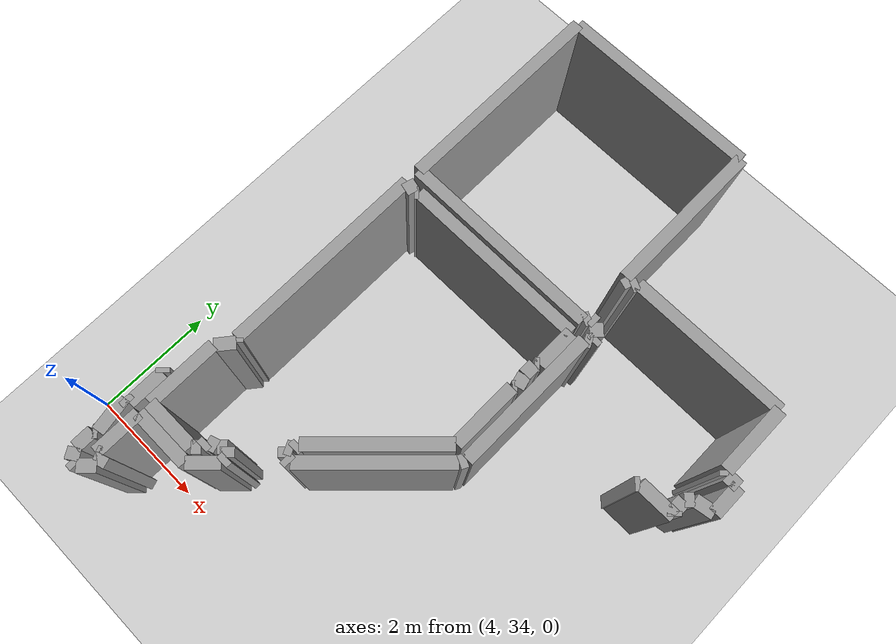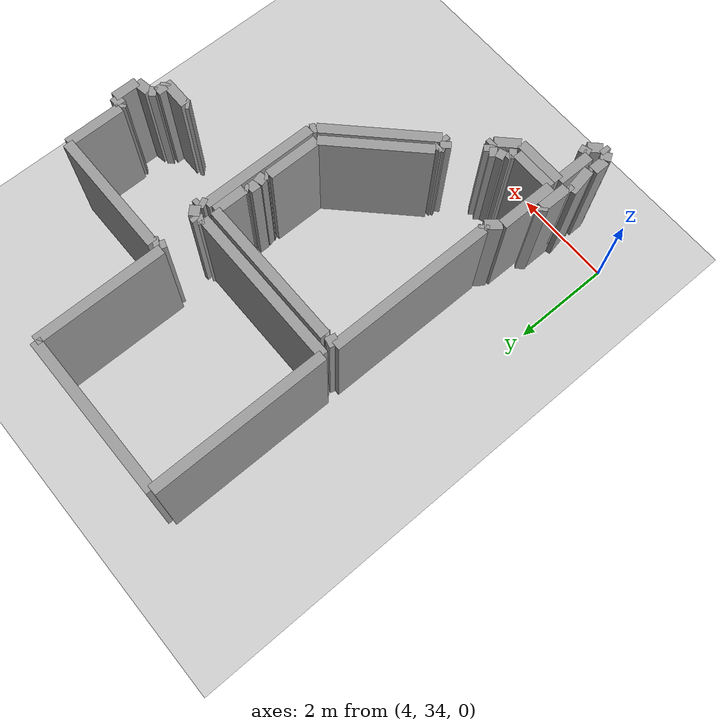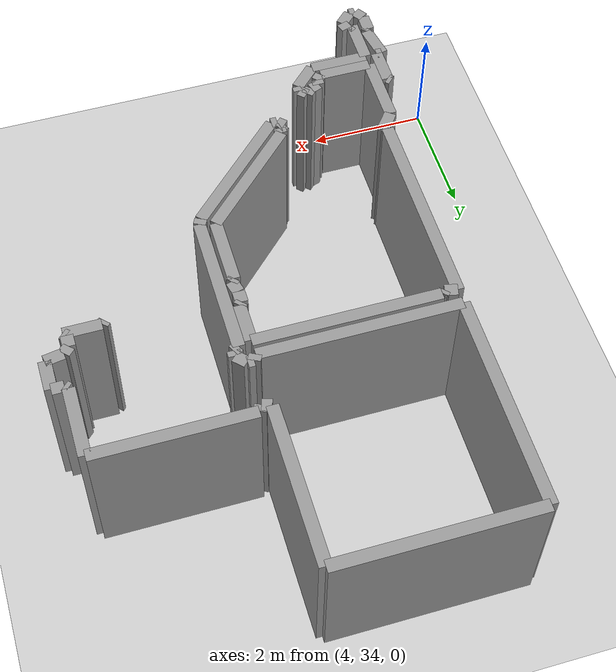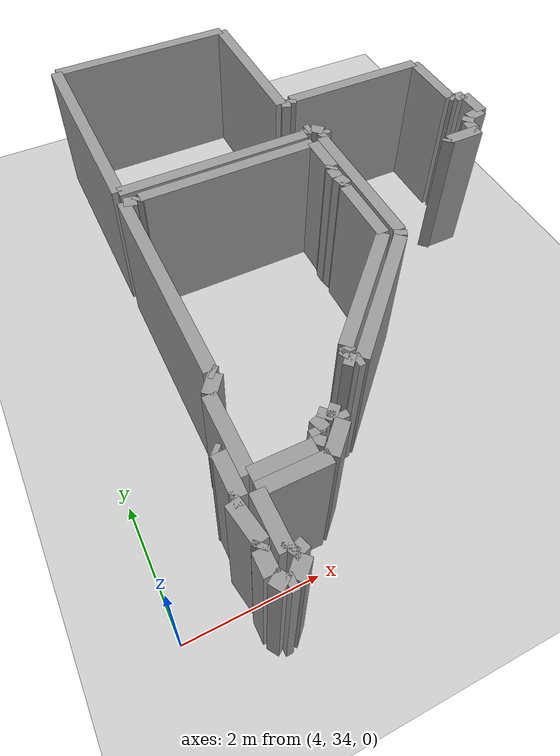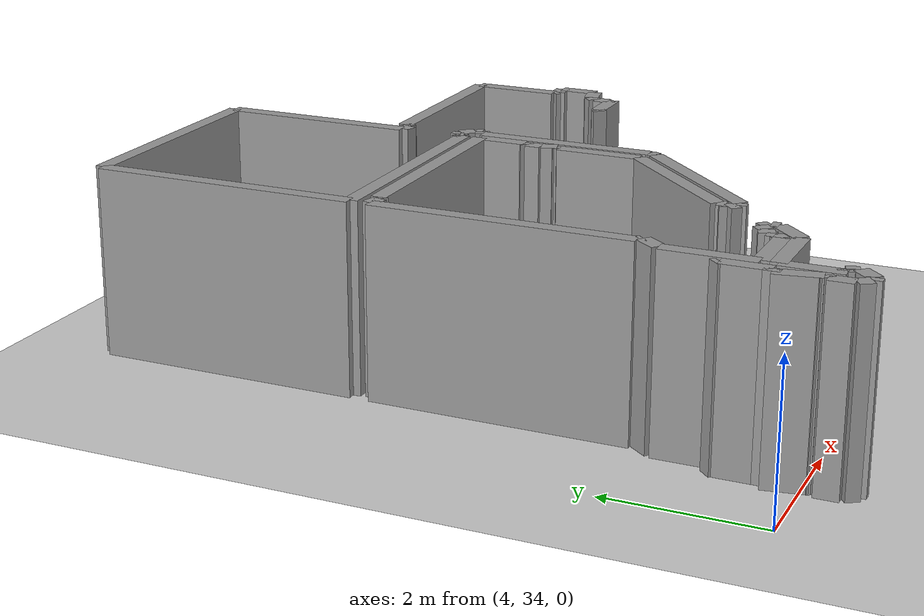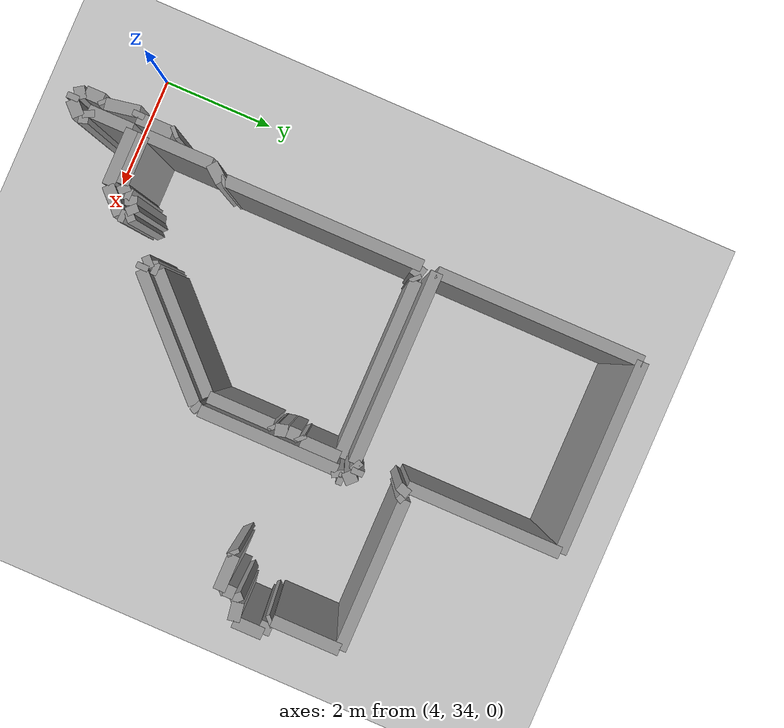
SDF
<sdf version="1.4">
 <world name="1_wall">
  <model name="ground_plane">
   <static>1</static>
   <link name="link">
    <collision name="collision">
     <geometry><plane><normal>0 0 1</normal><size>1000 1000</size></plane></geometry>
     <surface><friction><ode><mu>100</mu><mu2>50</mu2></ode></friction></surface>
    </collision>
    <visual name="visual">
     <cast_shadows>0</cast_shadows>
     <geometry><plane><normal>0 0 1</normal><size>10000 10000</size></plane></geometry>
     <material>
      <script><uri>file://media/materials/scripts/gazebo.material</uri><name>Gazebo/Grey</name></script>
     </material>
    </visual>
    <velocity_decay><linear>0</linear><angular>0</angular></velocity_decay>
   </link>
  </model>
  <model name="Wall_194">
   <static>1</static>
   <link name="Wall_194">
    <collision name="Wall_Collision_194">
     <geometry><box><size>0.0707106781187 0.2 2.5</size></box></geometry>
     <pose>0 0 1.25 0 -0 0</pose>
    </collision>
    <visual name="Wall_Visual_194">
     <pose>0 0 1.25 0 -0 0</pose>
     <geometry><box><size>0.0707106781187 0.2 2.5</size></box></geometry>
     <material>
      <script><uri>file://media/materials/scripts/gazebo.material</uri><name>Gazebo/Grey</name></script>
     </material>
    </visual>
    <velocity_decay><linear>0</linear><angular>0</angular></velocity_decay>
    <pose>5.075 35.075 0 0 0 -0.785398163397</pose>
   </link>
  </model>
  <model name="Wall_195">
   <static>1</static>
   <link name="Wall_195">
    <collision name="Wall_Collision_195">
     <geometry><box><size>0.6 0.2 2.5</size></box></geometry>
     <pose>0 0 1.25 0 -0 0</pose>
    </collision>
    <visual name="Wall_Visual_195">
     <pose>0 0 1.25 0 -0 0</pose>
     <geometry><box><size>0.6 0.2 2.5</size></box></geometry>
     <material>
      <script><uri>file://media/materials/scripts/gazebo.material</uri><name>Gazebo/Grey</name></script>
     </material>
    </visual>
    <velocity_decay><linear>0</linear><angular>0</angular></velocity_decay>
    <pose>5.1 34.75 0 0 0 -1.57079632679</pose>
   </link>
  </model>
  <model name="Wall_196">
   <static>1</static>
   <link name="Wall_196">
    <collision name="Wall_Collision_196">
     <geometry><box><size>0.1 0.2 2.5</size></box></geometry>
     <pose>0 0 1.25 0 -0 0</pose>
    </collision>
    <visual name="Wall_Visual_196">
     <pose>0 0 1.25 0 -0 0</pose>
     <geometry><box><size>0.1 0.2 2.5</size></box></geometry>
     <material>
      <script><uri>file://media/materials/scripts/gazebo.material</uri><name>Gazebo/Grey</name></script>
     </material>
    </visual>
    <velocity_decay><linear>0</linear><angular>0</angular></velocity_decay>
    <pose>5.05 34.45 0 0 0 3.14159265359</pose>
   </link>
  </model>
  <model name="Wall_197">
   <static>1</static>
   <link name="Wall_197">
    <collision name="Wall_Collision_197">
     <geometry><box><size>0.559016994375 0.2 2.5</size></box></geometry>
     <pose>0 0 1.25 0 -0 0</pose>
    </collision>
    <visual name="Wall_Visual_197">
     <pose>0 0 1.25 0 -0 0</pose>
     <geometry><box><size>0.559016994375 0.2 2.5</size></box></geometry>
     <material>
      <script><uri>file://media/materials/scripts/gazebo.material</uri><name>Gazebo/Grey</name></script>
     </material>
    </visual>
    <velocity_decay><linear>0</linear><angular>0</angular></velocity_decay>
    <pose>5.05 34.175 0 0 0 -1.390942827</pose>
   </link>
  </model>
  <model name="Wall_198">
   <static>1</static>
   <link name="Wall_198">
    <collision name="Wall_Collision_198">
     <geometry><box><size>0.0707106781187 0.2 2.5</size></box></geometry>
     <pose>0 0 1.25 0 -0 0</pose>
    </collision>
    <visual name="Wall_Visual_198">
     <pose>0 0 1.25 0 -0 0</pose>
     <geometry><box><size>0.0707106781187 0.2 2.5</size></box></geometry>
     <material>
      <script><uri>file://media/materials/scripts/gazebo.material</uri><name>Gazebo/Grey</name></script>
     </material>
    </visual>
    <velocity_decay><linear>0</linear><angular>0</angular></velocity_decay>
    <pose>5.075 33.875 0 0 0 -2.35619449019</pose>
   </link>
  </model>
  <model name="Wall_199">
   <static>1</static>
   <link name="Wall_199">
    <collision name="Wall_Collision_199">
     <geometry><box><size>0.3 0.2 2.5</size></box></geometry>
     <pose>0 0 1.25 0 -0 0</pose>
    </collision>
    <visual name="Wall_Visual_199">
     <pose>0 0 1.25 0 -0 0</pose>
     <geometry><box><size>0.3 0.2 2.5</size></box></geometry>
     <material>
      <script><uri>file://media/materials/scripts/gazebo.material</uri><name>Gazebo/Grey</name></script>
     </material>
    </visual>
    <velocity_decay><linear>0</linear><angular>0</angular></velocity_decay>
    <pose>5.05 33.7 0 0 0 -1.57079632679</pose>
   </link>
  </model>
  <model name="Wall_200">
   <static>1</static>
   <link name="Wall_200">
    <collision name="Wall_Collision_200">
     <geometry><box><size>0.180277563773 0.2 2.5</size></box></geometry>
     <pose>0 0 1.25 0 -0 0</pose>
    </collision>
    <visual name="Wall_Visual_200">
     <pose>0 0 1.25 0 -0 0</pose>
     <geometry><box><size>0.180277563773 0.2 2.5</size></box></geometry>
     <material>
      <script><uri>file://media/materials/scripts/gazebo.material</uri><name>Gazebo/Grey</name></script>
     </material>
    </visual>
    <velocity_decay><linear>0</linear><angular>0</angular></velocity_decay>
    <pose>5.1 33.475 0 0 0 -0.982793723247</pose>
   </link>
  </model>
  <model name="Wall_201">
   <static>1</static>
   <link name="Wall_201">
    <collision name="Wall_Collision_201">
     <geometry><box><size>0.1 0.2 2.5</size></box></geometry>
     <pose>0 0 1.25 0 -0 0</pose>
    </collision>
    <visual name="Wall_Visual_201">
     <pose>0 0 1.25 0 -0 0</pose>
     <geometry><box><size>0.1 0.2 2.5</size></box></geometry>
     <material>
      <script><uri>file://media/materials/scripts/gazebo.material</uri><name>Gazebo/Grey</name></script>
     </material>
    </visual>
    <velocity_decay><linear>0</linear><angular>0</angular></velocity_decay>
    <pose>5.2 33.4 0 0 0 0.0</pose>
   </link>
  </model>
  <model name="Wall_202">
   <static>1</static>
   <link name="Wall_202">
    <collision name="Wall_Collision_202">
     <geometry><box><size>0.282842712475 0.2 2.5</size></box></geometry>
     <pose>0 0 1.25 0 -0 0</pose>
    </collision>
    <visual name="Wall_Visual_202">
     <pose>0 0 1.25 0 -0 0</pose>
     <geometry><box><size>0.282842712475 0.2 2.5</size></box></geometry>
     <material>
      <script><uri>file://media/materials/scripts/gazebo.material</uri><name>Gazebo/Grey</name></script>
     </material>
    </visual>
    <velocity_decay><linear>0</linear><angular>0</angular></velocity_decay>
    <pose>5.35 33.5 0 0 0 0.785398163397</pose>
   </link>
  </model>
  <model name="Wall_203">
   <static>1</static>
   <link name="Wall_203">
    <collision name="Wall_Collision_203">
     <geometry><box><size>0.158113883008 0.2 2.5</size></box></geometry>
     <pose>0 0 1.25 0 -0 0</pose>
    </collision>
    <visual name="Wall_Visual_203">
     <pose>0 0 1.25 0 -0 0</pose>
     <geometry><box><size>0.158113883008 0.2 2.5</size></box></geometry>
     <material>
      <script><uri>file://media/materials/scripts/gazebo.material</uri><name>Gazebo/Grey</name></script>
     </material>
    </visual>
    <velocity_decay><linear>0</linear><angular>0</angular></velocity_decay>
    <pose>5.425 33.675 0 0 0 1.89254688119</pose>
   </link>
  </model>
  <model name="Wall_204">
   <static>1</static>
   <link name="Wall_204">
    <collision name="Wall_Collision_204">
     <geometry><box><size>0.111803398875 0.2 2.5</size></box></geometry>
     <pose>0 0 1.25 0 -0 0</pose>
    </collision>
    <visual name="Wall_Visual_204">
     <pose>0 0 1.25 0 -0 0</pose>
     <geometry><box><size>0.111803398875 0.2 2.5</size></box></geometry>
     <material>
      <script><uri>file://media/materials/scripts/gazebo.material</uri><name>Gazebo/Grey</name></script>
     </material>
    </visual>
    <velocity_decay><linear>0</linear><angular>0</angular></velocity_decay>
    <pose>5.35 33.725 0 0 0 -2.67794504459</pose>
   </link>
  </model>
  <model name="Wall_205">
   <static>1</static>
   <link name="Wall_205">
    <collision name="Wall_Collision_205">
     <geometry><box><size>0.75 0.2 2.5</size></box></geometry>
     <pose>0 0 1.25 0 -0 0</pose>
    </collision>
    <visual name="Wall_Visual_205">
     <pose>0 0 1.25 0 -0 0</pose>
     <geometry><box><size>0.75 0.2 2.5</size></box></geometry>
     <material>
      <script><uri>file://media/materials/scripts/gazebo.material</uri><name>Gazebo/Grey</name></script>
     </material>
    </visual>
    <velocity_decay><linear>0</linear><angular>0</angular></velocity_decay>
    <pose>5.3 34.075 0 0 0 1.57079632679</pose>
   </link>
  </model>
  <model name="Wall_206">
   <static>1</static>
   <link name="Wall_206">
    <collision name="Wall_Collision_206">
     <geometry><box><size>0.95 0.2 2.5</size></box></geometry>
     <pose>0 0 1.25 0 -0 0</pose>
    </collision>
    <visual name="Wall_Visual_206">
     <pose>0 0 1.25 0 -0 0</pose>
     <geometry><box><size>0.95 0.2 2.5</size></box></geometry>
     <material>
      <script><uri>file://media/materials/scripts/gazebo.material</uri><name>Gazebo/Grey</name></script>
     </material>
    </visual>
    <velocity_decay><linear>0</linear><angular>0</angular></velocity_decay>
    <pose>5.775 34.45 0 0 0 0.0</pose>
   </link>
  </model>
  <model name="Wall_207">
   <static>1</static>
   <link name="Wall_207">
    <collision name="Wall_Collision_207">
     <geometry><box><size>0.494974746831 0.2 2.5</size></box></geometry>
     <pose>0 0 1.25 0 -0 0</pose>
    </collision>
    <visual name="Wall_Visual_207">
     <pose>0 0 1.25 0 -0 0</pose>
     <geometry><box><size>0.494974746831 0.2 2.5</size></box></geometry>
     <material>
      <script><uri>file://media/materials/scripts/gazebo.material</uri><name>Gazebo/Grey</name></script>
     </material>
    </visual>
    <velocity_decay><linear>0</linear><angular>0</angular></velocity_decay>
    <pose>6.425 34.625 0 0 0 0.785398163397</pose>
   </link>
  </model>
  <model name="Wall_208">
   <static>1</static>
   <link name="Wall_208">
    <collision name="Wall_Collision_208">
     <geometry><box><size>0.1 0.2 2.5</size></box></geometry>
     <pose>0 0 1.25 0 -0 0</pose>
    </collision>
    <visual name="Wall_Visual_208">
     <pose>0 0 1.25 0 -0 0</pose>
     <geometry><box><size>0.1 0.2 2.5</size></box></geometry>
     <material>
      <script><uri>file://media/materials/scripts/gazebo.material</uri><name>Gazebo/Grey</name></script>
     </material>
    </visual>
    <velocity_decay><linear>0</linear><angular>0</angular></velocity_decay>
    <pose>6.6 34.85 0 0 0 1.57079632679</pose>
   </link>
  </model>
  <model name="Wall_209">
   <static>1</static>
   <link name="Wall_209">
    <collision name="Wall_Collision_209">
     <geometry><box><size>0.141421356237 0.2 2.5</size></box></geometry>
     <pose>0 0 1.25 0 -0 0</pose>
    </collision>
    <visual name="Wall_Visual_209">
     <pose>0 0 1.25 0 -0 0</pose>
     <geometry><box><size>0.141421356237 0.2 2.5</size></box></geometry>
     <material>
      <script><uri>file://media/materials/scripts/gazebo.material</uri><name>Gazebo/Grey</name></script>
     </material>
    </visual>
    <velocity_decay><linear>0</linear><angular>0</angular></velocity_decay>
    <pose>6.55 34.95 0 0 0 2.35619449019</pose>
   </link>
  </model>
  <model name="Wall_210">
   <static>1</static>
   <link name="Wall_210">
    <collision name="Wall_Collision_210">
     <geometry><box><size>0.141421356237 0.2 2.5</size></box></geometry>
     <pose>0 0 1.25 0 -0 0</pose>
    </collision>
    <visual name="Wall_Visual_210">
     <pose>0 0 1.25 0 -0 0</pose>
     <geometry><box><size>0.141421356237 0.2 2.5</size></box></geometry>
     <material>
      <script><uri>file://media/materials/scripts/gazebo.material</uri><name>Gazebo/Grey</name></script>
     </material>
    </visual>
    <velocity_decay><linear>0</linear><angular>0</angular></velocity_decay>
    <pose>6.45 34.95 0 0 0 -2.35619449019</pose>
   </link>
  </model>
  <model name="Wall_211">
   <static>1</static>
   <link name="Wall_211">
    <collision name="Wall_Collision_211">
     <geometry><box><size>0.158113883008 0.2 2.5</size></box></geometry>
     <pose>0 0 1.25 0 -0 0</pose>
    </collision>
    <visual name="Wall_Visual_211">
     <pose>0 0 1.25 0 -0 0</pose>
     <geometry><box><size>0.158113883008 0.2 2.5</size></box></geometry>
     <material>
      <script><uri>file://media/materials/scripts/gazebo.material</uri><name>Gazebo/Grey</name></script>
     </material>
    </visual>
    <velocity_decay><linear>0</linear><angular>0</angular></velocity_decay>
    <pose>6.325 34.875 0 0 0 -2.81984209919</pose>
   </link>
  </model>
  <model name="Wall_212">
   <static>1</static>
   <link name="Wall_212">
    <collision name="Wall_Collision_212">
     <geometry><box><size>0.1 0.2 2.5</size></box></geometry>
     <pose>0 0 1.25 0 -0 0</pose>
    </collision>
    <visual name="Wall_Visual_212">
     <pose>0 0 1.25 0 -0 0</pose>
     <geometry><box><size>0.1 0.2 2.5</size></box></geometry>
     <material>
      <script><uri>file://media/materials/scripts/gazebo.material</uri><name>Gazebo/Grey</name></script>
     </material>
    </visual>
    <velocity_decay><linear>0</linear><angular>0</angular></velocity_decay>
    <pose>6.25 34.8 0 0 0 -1.57079632679</pose>
   </link>
  </model>
  <model name="Wall_213">
   <static>1</static>
   <link name="Wall_213">
    <collision name="Wall_Collision_213">
     <geometry><box><size>0.141421356237 0.2 2.5</size></box></geometry>
     <pose>0 0 1.25 0 -0 0</pose>
    </collision>
    <visual name="Wall_Visual_213">
     <pose>0 0 1.25 0 -0 0</pose>
     <geometry><box><size>0.141421356237 0.2 2.5</size></box></geometry>
     <material>
      <script><uri>file://media/materials/scripts/gazebo.material</uri><name>Gazebo/Grey</name></script>
     </material>
    </visual>
    <velocity_decay><linear>0</linear><angular>0</angular></velocity_decay>
    <pose>6.2 34.7 0 0 0 -2.35619449019</pose>
   </link>
  </model>
  <model name="Wall_214">
   <static>1</static>
   <link name="Wall_214">
    <collision name="Wall_Collision_214">
     <geometry><box><size>0.85 0.2 2.5</size></box></geometry>
     <pose>0 0 1.25 0 -0 0</pose>
    </collision>
    <visual name="Wall_Visual_214">
     <pose>0 0 1.25 0 -0 0</pose>
     <geometry><box><size>0.85 0.2 2.5</size></box></geometry>
     <material>
      <script><uri>file://media/materials/scripts/gazebo.material</uri><name>Gazebo/Grey</name></script>
     </material>
    </visual>
    <velocity_decay><linear>0</linear><angular>0</angular></velocity_decay>
    <pose>5.725 34.65 0 0 0 3.14159265359</pose>
   </link>
  </model>
  <model name="Wall_215">
   <static>1</static>
   <link name="Wall_215">
    <collision name="Wall_Collision_215">
     <geometry><box><size>1.15 0.2 2.5</size></box></geometry>
     <pose>0 0 1.25 0 -0 0</pose>
    </collision>
    <visual name="Wall_Visual_215">
     <pose>0 0 1.25 0 -0 0</pose>
     <geometry><box><size>1.15 0.2 2.5</size></box></geometry>
     <material>
      <script><uri>file://media/materials/scripts/gazebo.material</uri><name>Gazebo/Grey</name></script>
     </material>
    </visual>
    <velocity_decay><linear>0</linear><angular>0</angular></velocity_decay>
    <pose>5.3 35.225 0 0 0 1.57079632679</pose>
   </link>
  </model>
  <model name="Wall_216">
   <static>1</static>
   <link name="Wall_216">
    <collision name="Wall_Collision_216">
     <geometry><box><size>0.320156211872 0.2 2.5</size></box></geometry>
     <pose>0 0 1.25 0 -0 0</pose>
    </collision>
    <visual name="Wall_Visual_216">
     <pose>0 0 1.25 0 -0 0</pose>
     <geometry><box><size>0.320156211872 0.2 2.5</size></box></geometry>
     <material>
      <script><uri>file://media/materials/scripts/gazebo.material</uri><name>Gazebo/Grey</name></script>
     </material>
    </visual>
    <velocity_decay><linear>0</linear><angular>0</angular></velocity_decay>
    <pose>5.4 35.925 0 0 0 0.896055384571</pose>
   </link>
  </model>
  <model name="Wall_217">
   <static>1</static>
   <link name="Wall_217">
    <collision name="Wall_Collision_217">
     <geometry><box><size>0.0707106781187 0.2 2.5</size></box></geometry>
     <pose>0 0 1.25 0 -0 0</pose>
    </collision>
    <visual name="Wall_Visual_217">
     <pose>0 0 1.25 0 -0 0</pose>
     <geometry><box><size>0.0707106781187 0.2 2.5</size></box></geometry>
     <material>
      <script><uri>file://media/materials/scripts/gazebo.material</uri><name>Gazebo/Grey</name></script>
     </material>
    </visual>
    <velocity_decay><linear>0</linear><angular>0</angular></velocity_decay>
    <pose>5.475 36.075 0 0 0 2.35619449019</pose>
   </link>
  </model>
  <model name="Wall_218">
   <static>1</static>
   <link name="Wall_218">
    <collision name="Wall_Collision_218">
     <geometry><box><size>3.35 0.2 2.5</size></box></geometry>
     <pose>0 0 1.25 0 -0 0</pose>
    </collision>
    <visual name="Wall_Visual_218">
     <pose>0 0 1.25 0 -0 0</pose>
     <geometry><box><size>3.35 0.2 2.5</size></box></geometry>
     <material>
      <script><uri>file://media/materials/scripts/gazebo.material</uri><name>Gazebo/Grey</name></script>
     </material>
    </visual>
    <velocity_decay><linear>0</linear><angular>0</angular></velocity_decay>
    <pose>5.45 37.775 0 0 0 1.57079632679</pose>
   </link>
  </model>
  <model name="Wall_219">
   <static>1</static>
   <link name="Wall_219">
    <collision name="Wall_Collision_219">
     <geometry><box><size>0.206155281281 0.2 2.5</size></box></geometry>
     <pose>0 0 1.25 0 -0 0</pose>
    </collision>
    <visual name="Wall_Visual_219">
     <pose>0 0 1.25 0 -0 0</pose>
     <geometry><box><size>0.206155281281 0.2 2.5</size></box></geometry>
     <material>
      <script><uri>file://media/materials/scripts/gazebo.material</uri><name>Gazebo/Grey</name></script>
     </material>
    </visual>
    <velocity_decay><linear>0</linear><angular>0</angular></velocity_decay>
    <pose>5.55 39.425 0 0 0 -0.244978663127</pose>
   </link>
  </model>
  <model name="Wall_220">
   <static>1</static>
   <link name="Wall_220">
    <collision name="Wall_Collision_220">
     <geometry><box><size>0.0707106781187 0.2 2.5</size></box></geometry>
     <pose>0 0 1.25 0 -0 0</pose>
    </collision>
    <visual name="Wall_Visual_220">
     <pose>0 0 1.25 0 -0 0</pose>
     <geometry><box><size>0.0707106781187 0.2 2.5</size></box></geometry>
     <material>
      <script><uri>file://media/materials/scripts/gazebo.material</uri><name>Gazebo/Grey</name></script>
     </material>
    </visual>
    <velocity_decay><linear>0</linear><angular>0</angular></velocity_decay>
    <pose>5.675 39.425 0 0 0 0.785398163397</pose>
   </link>
  </model>
  <model name="Wall_221">
   <static>1</static>
   <link name="Wall_221">
    <collision name="Wall_Collision_221">
     <geometry><box><size>3.0 0.2 2.5</size></box></geometry>
     <pose>0 0 1.25 0 -0 0</pose>
    </collision>
    <visual name="Wall_Visual_221">
     <pose>0 0 1.25 0 -0 0</pose>
     <geometry><box><size>3.0 0.2 2.5</size></box></geometry>
     <material>
      <script><uri>file://media/materials/scripts/gazebo.material</uri><name>Gazebo/Grey</name></script>
     </material>
    </visual>
    <velocity_decay><linear>0</linear><angular>0</angular></velocity_decay>
    <pose>7.2 39.45 0 0 0 0.0</pose>
   </link>
  </model>
  <model name="Wall_222">
   <static>1</static>
   <link name="Wall_222">
    <collision name="Wall_Collision_222">
     <geometry><box><size>0.65 0.2 2.5</size></box></geometry>
     <pose>0 0 1.25 0 -0 0</pose>
    </collision>
    <visual name="Wall_Visual_222">
     <pose>0 0 1.25 0 -0 0</pose>
     <geometry><box><size>0.65 0.2 2.5</size></box></geometry>
     <material>
      <script><uri>file://media/materials/scripts/gazebo.material</uri><name>Gazebo/Grey</name></script>
     </material>
    </visual>
    <velocity_decay><linear>0</linear><angular>0</angular></velocity_decay>
    <pose>8.7 39.125 0 0 0 -1.57079632679</pose>
   </link>
  </model>
  <model name="Wall_223">
   <static>1</static>
   <link name="Wall_223">
    <collision name="Wall_Collision_223">
     <geometry><box><size>0.0707106781187 0.2 2.5</size></box></geometry>
     <pose>0 0 1.25 0 -0 0</pose>
    </collision>
    <visual name="Wall_Visual_223">
     <pose>0 0 1.25 0 -0 0</pose>
     <geometry><box><size>0.0707106781187 0.2 2.5</size></box></geometry>
     <material>
      <script><uri>file://media/materials/scripts/gazebo.material</uri><name>Gazebo/Grey</name></script>
     </material>
    </visual>
    <velocity_decay><linear>0</linear><angular>0</angular></velocity_decay>
    <pose>8.675 38.775 0 0 0 -2.35619449019</pose>
   </link>
  </model>
  <model name="Wall_224">
   <static>1</static>
   <link name="Wall_224">
    <collision name="Wall_Collision_224">
     <geometry><box><size>0.2 0.2 2.5</size></box></geometry>
     <pose>0 0 1.25 0 -0 0</pose>
    </collision>
    <visual name="Wall_Visual_224">
     <pose>0 0 1.25 0 -0 0</pose>
     <geometry><box><size>0.2 0.2 2.5</size></box></geometry>
     <material>
      <script><uri>file://media/materials/scripts/gazebo.material</uri><name>Gazebo/Grey</name></script>
     </material>
    </visual>
    <velocity_decay><linear>0</linear><angular>0</angular></velocity_decay>
    <pose>8.65 38.65 0 0 0 -1.57079632679</pose>
   </link>
  </model>
  <model name="Wall_225">
   <static>1</static>
   <link name="Wall_225">
    <collision name="Wall_Collision_225">
     <geometry><box><size>0.206155281281 0.2 2.5</size></box></geometry>
     <pose>0 0 1.25 0 -0 0</pose>
    </collision>
    <visual name="Wall_Visual_225">
     <pose>0 0 1.25 0 -0 0</pose>
     <geometry><box><size>0.206155281281 0.2 2.5</size></box></geometry>
     <material>
      <script><uri>file://media/materials/scripts/gazebo.material</uri><name>Gazebo/Grey</name></script>
     </material>
    </visual>
    <velocity_decay><linear>0</linear><angular>0</angular></velocity_decay>
    <pose>8.675 38.45 0 0 0 -1.32581766367</pose>
   </link>
  </model>
  <model name="Wall_226">
   <static>1</static>
   <link name="Wall_226">
    <collision name="Wall_Collision_226">
     <geometry><box><size>0.0707106781187 0.2 2.5</size></box></geometry>
     <pose>0 0 1.25 0 -0 0</pose>
    </collision>
    <visual name="Wall_Visual_226">
     <pose>0 0 1.25 0 -0 0</pose>
     <geometry><box><size>0.0707106781187 0.2 2.5</size></box></geometry>
     <material>
      <script><uri>file://media/materials/scripts/gazebo.material</uri><name>Gazebo/Grey</name></script>
     </material>
    </visual>
    <velocity_decay><linear>0</linear><angular>0</angular></velocity_decay>
    <pose>8.675 38.325 0 0 0 -2.35619449019</pose>
   </link>
  </model>
  <model name="Wall_227">
   <static>1</static>
   <link name="Wall_227">
    <collision name="Wall_Collision_227">
     <geometry><box><size>1.1 0.2 2.5</size></box></geometry>
     <pose>0 0 1.25 0 -0 0</pose>
    </collision>
    <visual name="Wall_Visual_227">
     <pose>0 0 1.25 0 -0 0</pose>
     <geometry><box><size>1.1 0.2 2.5</size></box></geometry>
     <material>
      <script><uri>file://media/materials/scripts/gazebo.material</uri><name>Gazebo/Grey</name></script>
     </material>
    </visual>
    <velocity_decay><linear>0</linear><angular>0</angular></velocity_decay>
    <pose>8.65 37.75 0 0 0 -1.57079632679</pose>
   </link>
  </model>
  <model name="Wall_228">
   <static>1</static>
   <link name="Wall_228">
    <collision name="Wall_Collision_228">
     <geometry><box><size>2.12132034356 0.2 2.5</size></box></geometry>
     <pose>0 0 1.25 0 -0 0</pose>
    </collision>
    <visual name="Wall_Visual_228">
     <pose>0 0 1.25 0 -0 0</pose>
     <geometry><box><size>2.12132034356 0.2 2.5</size></box></geometry>
     <material>
      <script><uri>file://media/materials/scripts/gazebo.material</uri><name>Gazebo/Grey</name></script>
     </material>
    </visual>
    <velocity_decay><linear>0</linear><angular>0</angular></velocity_decay>
    <pose>7.9 36.45 0 0 0 -2.35619449019</pose>
   </link>
  </model>
  <model name="Wall_229">
   <static>1</static>
   <link name="Wall_229">
    <collision name="Wall_Collision_229">
     <geometry><box><size>0.1 0.2 2.5</size></box></geometry>
     <pose>0 0 1.25 0 -0 0</pose>
    </collision>
    <visual name="Wall_Visual_229">
     <pose>0 0 1.25 0 -0 0</pose>
     <geometry><box><size>0.1 0.2 2.5</size></box></geometry>
     <material>
      <script><uri>file://media/materials/scripts/gazebo.material</uri><name>Gazebo/Grey</name></script>
     </material>
    </visual>
    <velocity_decay><linear>0</linear><angular>0</angular></velocity_decay>
    <pose>7.15 35.65 0 0 0 -1.57079632679</pose>
   </link>
  </model>
  <model name="Wall_230">
   <static>1</static>
   <link name="Wall_230">
    <collision name="Wall_Collision_230">
     <geometry><box><size>0.111803398875 0.2 2.5</size></box></geometry>
     <pose>0 0 1.25 0 -0 0</pose>
    </collision>
    <visual name="Wall_Visual_230">
     <pose>0 0 1.25 0 -0 0</pose>
     <geometry><box><size>0.111803398875 0.2 2.5</size></box></geometry>
     <material>
      <script><uri>file://media/materials/scripts/gazebo.material</uri><name>Gazebo/Grey</name></script>
     </material>
    </visual>
    <velocity_decay><linear>0</linear><angular>0</angular></velocity_decay>
    <pose>7.1 35.575 0 0 0 -2.67794504459</pose>
   </link>
  </model>
  <model name="Wall_231">
   <static>1</static>
   <link name="Wall_231">
    <collision name="Wall_Collision_231">
     <geometry><box><size>0.141421356237 0.2 2.5</size></box></geometry>
     <pose>0 0 1.25 0 -0 0</pose>
    </collision>
    <visual name="Wall_Visual_231">
     <pose>0 0 1.25 0 -0 0</pose>
     <geometry><box><size>0.141421356237 0.2 2.5</size></box></geometry>
     <material>
      <script><uri>file://media/materials/scripts/gazebo.material</uri><name>Gazebo/Grey</name></script>
     </material>
    </visual>
    <velocity_decay><linear>0</linear><angular>0</angular></velocity_decay>
    <pose>7.1 35.5 0 0 0 -0.785398163397</pose>
   </link>
  </model>
  <model name="Wall_232">
   <static>1</static>
   <link name="Wall_232">
    <collision name="Wall_Collision_232">
     <geometry><box><size>0.1 0.2 2.5</size></box></geometry>
     <pose>0 0 1.25 0 -0 0</pose>
    </collision>
    <visual name="Wall_Visual_232">
     <pose>0 0 1.25 0 -0 0</pose>
     <geometry><box><size>0.1 0.2 2.5</size></box></geometry>
     <material>
      <script><uri>file://media/materials/scripts/gazebo.material</uri><name>Gazebo/Grey</name></script>
     </material>
    </visual>
    <velocity_decay><linear>0</linear><angular>0</angular></velocity_decay>
    <pose>7.2 35.45 0 0 0 0.0</pose>
   </link>
  </model>
  <model name="Wall_233">
   <static>1</static>
   <link name="Wall_233">
    <collision name="Wall_Collision_233">
     <geometry><box><size>2.2627416998 0.2 2.5</size></box></geometry>
     <pose>0 0 1.25 0 -0 0</pose>
    </collision>
    <visual name="Wall_Visual_233">
     <pose>0 0 1.25 0 -0 0</pose>
     <geometry><box><size>2.2627416998 0.2 2.5</size></box></geometry>
     <material>
      <script><uri>file://media/materials/scripts/gazebo.material</uri><name>Gazebo/Grey</name></script>
     </material>
    </visual>
    <velocity_decay><linear>0</linear><angular>0</angular></velocity_decay>
    <pose>8.05 36.25 0 0 0 0.785398163397</pose>
   </link>
  </model>
  <model name="Wall_234">
   <static>1</static>
   <link name="Wall_234">
    <collision name="Wall_Collision_234">
     <geometry><box><size>0.111803398875 0.2 2.5</size></box></geometry>
     <pose>0 0 1.25 0 -0 0</pose>
    </collision>
    <visual name="Wall_Visual_234">
     <pose>0 0 1.25 0 -0 0</pose>
     <geometry><box><size>0.111803398875 0.2 2.5</size></box></geometry>
     <material>
      <script><uri>file://media/materials/scripts/gazebo.material</uri><name>Gazebo/Grey</name></script>
     </material>
    </visual>
    <velocity_decay><linear>0</linear><angular>0</angular></velocity_decay>
    <pose>8.875 37.1 0 0 0 1.10714871779</pose>
   </link>
  </model>
  <model name="Wall_235">
   <static>1</static>
   <link name="Wall_235">
    <collision name="Wall_Collision_235">
     <geometry><box><size>2.35 0.2 2.5</size></box></geometry>
     <pose>0 0 1.25 0 -0 0</pose>
    </collision>
    <visual name="Wall_Visual_235">
     <pose>0 0 1.25 0 -0 0</pose>
     <geometry><box><size>2.35 0.2 2.5</size></box></geometry>
     <material>
      <script><uri>file://media/materials/scripts/gazebo.material</uri><name>Gazebo/Grey</name></script>
     </material>
    </visual>
    <velocity_decay><linear>0</linear><angular>0</angular></velocity_decay>
    <pose>8.9 38.325 0 0 0 1.57079632679</pose>
   </link>
  </model>
  <model name="Wall_236">
   <static>1</static>
   <link name="Wall_236">
    <collision name="Wall_Collision_236">
     <geometry><box><size>0.111803398875 0.2 2.5</size></box></geometry>
     <pose>0 0 1.25 0 -0 0</pose>
    </collision>
    <visual name="Wall_Visual_236">
     <pose>0 0 1.25 0 -0 0</pose>
     <geometry><box><size>0.111803398875 0.2 2.5</size></box></geometry>
     <material>
      <script><uri>file://media/materials/scripts/gazebo.material</uri><name>Gazebo/Grey</name></script>
     </material>
    </visual>
    <velocity_decay><linear>0</linear><angular>0</angular></velocity_decay>
    <pose>8.95 39.525 0 0 0 0.463647609001</pose>
   </link>
  </model>
  <model name="Wall_237">
   <static>1</static>
   <link name="Wall_237">
    <collision name="Wall_Collision_237">
     <geometry><box><size>0.1 0.2 2.5</size></box></geometry>
     <pose>0 0 1.25 0 -0 0</pose>
    </collision>
    <visual name="Wall_Visual_237">
     <pose>0 0 1.25 0 -0 0</pose>
     <geometry><box><size>0.1 0.2 2.5</size></box></geometry>
     <material>
      <script><uri>file://media/materials/scripts/gazebo.material</uri><name>Gazebo/Grey</name></script>
     </material>
    </visual>
    <velocity_decay><linear>0</linear><angular>0</angular></velocity_decay>
    <pose>9.0 39.6 0 0 0 1.57079632679</pose>
   </link>
  </model>
  <model name="Wall_238">
   <static>1</static>
   <link name="Wall_238">
    <collision name="Wall_Collision_238">
     <geometry><box><size>0.212132034356 0.2 2.5</size></box></geometry>
     <pose>0 0 1.25 0 -0 0</pose>
    </collision>
    <visual name="Wall_Visual_238">
     <pose>0 0 1.25 0 -0 0</pose>
     <geometry><box><size>0.212132034356 0.2 2.5</size></box></geometry>
     <material>
      <script><uri>file://media/materials/scripts/gazebo.material</uri><name>Gazebo/Grey</name></script>
     </material>
    </visual>
    <velocity_decay><linear>0</linear><angular>0</angular></velocity_decay>
    <pose>8.925 39.725 0 0 0 2.35619449019</pose>
   </link>
  </model>
  <model name="Wall_239">
   <static>1</static>
   <link name="Wall_239">
    <collision name="Wall_Collision_239">
     <geometry><box><size>0.1 0.2 2.5</size></box></geometry>
     <pose>0 0 1.25 0 -0 0</pose>
    </collision>
    <visual name="Wall_Visual_239">
     <pose>0 0 1.25 0 -0 0</pose>
     <geometry><box><size>0.1 0.2 2.5</size></box></geometry>
     <material>
      <script><uri>file://media/materials/scripts/gazebo.material</uri><name>Gazebo/Grey</name></script>
     </material>
    </visual>
    <velocity_decay><linear>0</linear><angular>0</angular></velocity_decay>
    <pose>8.8 39.8 0 0 0 3.14159265359</pose>
   </link>
  </model>
  <model name="Wall_240">
   <static>1</static>
   <link name="Wall_240">
    <collision name="Wall_Collision_240">
     <geometry><box><size>0.111803398875 0.2 2.5</size></box></geometry>
     <pose>0 0 1.25 0 -0 0</pose>
    </collision>
    <visual name="Wall_Visual_240">
     <pose>0 0 1.25 0 -0 0</pose>
     <geometry><box><size>0.111803398875 0.2 2.5</size></box></geometry>
     <material>
      <script><uri>file://media/materials/scripts/gazebo.material</uri><name>Gazebo/Grey</name></script>
     </material>
    </visual>
    <velocity_decay><linear>0</linear><angular>0</angular></velocity_decay>
    <pose>8.725 39.75 0 0 0 -2.0344439358</pose>
   </link>
  </model>
  <model name="Wall_241">
   <static>1</static>
   <link name="Wall_241">
    <collision name="Wall_Collision_241">
     <geometry><box><size>3.25 0.2 2.5</size></box></geometry>
     <pose>0 0 1.25 0 -0 0</pose>
    </collision>
    <visual name="Wall_Visual_241">
     <pose>0 0 1.25 0 -0 0</pose>
     <geometry><box><size>3.25 0.2 2.5</size></box></geometry>
     <material>
      <script><uri>file://media/materials/scripts/gazebo.material</uri><name>Gazebo/Grey</name></script>
     </material>
    </visual>
    <velocity_decay><linear>0</linear><angular>0</angular></velocity_decay>
    <pose>7.075 39.7 0 0 0 3.14159265359</pose>
   </link>
  </model>
  <model name="Wall_242">
   <static>1</static>
   <link name="Wall_242">
    <collision name="Wall_Collision_242">
     <geometry><box><size>3.5 0.2 2.5</size></box></geometry>
     <pose>0 0 1.25 0 -0 0</pose>
    </collision>
    <visual name="Wall_Visual_242">
     <pose>0 0 1.25 0 -0 0</pose>
     <geometry><box><size>3.5 0.2 2.5</size></box></geometry>
     <material>
      <script><uri>file://media/materials/scripts/gazebo.material</uri><name>Gazebo/Grey</name></script>
     </material>
    </visual>
    <velocity_decay><linear>0</linear><angular>0</angular></velocity_decay>
    <pose>5.45 41.45 0 0 0 1.57079632679</pose>
   </link>
  </model>
  <model name="Wall_243">
   <static>1</static>
   <link name="Wall_243">
    <collision name="Wall_Collision_243">
     <geometry><box><size>3.25 0.2 2.5</size></box></geometry>
     <pose>0 0 1.25 0 -0 0</pose>
    </collision>
    <visual name="Wall_Visual_243">
     <pose>0 0 1.25 0 -0 0</pose>
     <geometry><box><size>3.25 0.2 2.5</size></box></geometry>
     <material>
      <script><uri>file://media/materials/scripts/gazebo.material</uri><name>Gazebo/Grey</name></script>
     </material>
    </visual>
    <velocity_decay><linear>0</linear><angular>0</angular></velocity_decay>
    <pose>7.075 43.2 0 0 0 0.0</pose>
   </link>
  </model>
  <model name="Wall_244">
   <static>1</static>
   <link name="Wall_244">
    <collision name="Wall_Collision_244">
     <geometry><box><size>2.6 0.2 2.5</size></box></geometry>
     <pose>0 0 1.25 0 -0 0</pose>
    </collision>
    <visual name="Wall_Visual_244">
     <pose>0 0 1.25 0 -0 0</pose>
     <geometry><box><size>2.6 0.2 2.5</size></box></geometry>
     <material>
      <script><uri>file://media/materials/scripts/gazebo.material</uri><name>Gazebo/Grey</name></script>
     </material>
    </visual>
    <velocity_decay><linear>0</linear><angular>0</angular></velocity_decay>
    <pose>8.7 41.9 0 0 0 -1.57079632679</pose>
   </link>
  </model>
  <model name="Wall_245">
   <static>1</static>
   <link name="Wall_245">
    <collision name="Wall_Collision_245">
     <geometry><box><size>0.158113883008 0.2 2.5</size></box></geometry>
     <pose>0 0 1.25 0 -0 0</pose>
    </collision>
    <visual name="Wall_Visual_245">
     <pose>0 0 1.25 0 -0 0</pose>
     <geometry><box><size>0.158113883008 0.2 2.5</size></box></geometry>
     <material>
      <script><uri>file://media/materials/scripts/gazebo.material</uri><name>Gazebo/Grey</name></script>
     </material>
    </visual>
    <velocity_decay><linear>0</linear><angular>0</angular></velocity_decay>
    <pose>8.775 40.575 0 0 0 -0.321750554397</pose>
   </link>
  </model>
  <model name="Wall_246">
   <static>1</static>
   <link name="Wall_246">
    <collision name="Wall_Collision_246">
     <geometry><box><size>0.111803398875 0.2 2.5</size></box></geometry>
     <pose>0 0 1.25 0 -0 0</pose>
    </collision>
    <visual name="Wall_Visual_246">
     <pose>0 0 1.25 0 -0 0</pose>
     <geometry><box><size>0.111803398875 0.2 2.5</size></box></geometry>
     <material>
      <script><uri>file://media/materials/scripts/gazebo.material</uri><name>Gazebo/Grey</name></script>
     </material>
    </visual>
    <velocity_decay><linear>0</linear><angular>0</angular></velocity_decay>
    <pose>8.875 40.6 0 0 0 1.10714871779</pose>
   </link>
  </model>
  <model name="Wall_247">
   <static>1</static>
   <link name="Wall_247">
    <collision name="Wall_Collision_247">
     <geometry><box><size>2.55 0.2 2.5</size></box></geometry>
     <pose>0 0 1.25 0 -0 0</pose>
    </collision>
    <visual name="Wall_Visual_247">
     <pose>0 0 1.25 0 -0 0</pose>
     <geometry><box><size>2.55 0.2 2.5</size></box></geometry>
     <material>
      <script><uri>file://media/materials/scripts/gazebo.material</uri><name>Gazebo/Grey</name></script>
     </material>
    </visual>
    <velocity_decay><linear>0</linear><angular>0</angular></velocity_decay>
    <pose>10.175 40.65 0 0 0 0.0</pose>
   </link>
  </model>
  <model name="Wall_248">
   <static>1</static>
   <link name="Wall_248">
    <collision name="Wall_Collision_248">
     <geometry><box><size>1.15 0.2 2.5</size></box></geometry>
     <pose>0 0 1.25 0 -0 0</pose>
    </collision>
    <visual name="Wall_Visual_248">
     <pose>0 0 1.25 0 -0 0</pose>
     <geometry><box><size>1.15 0.2 2.5</size></box></geometry>
     <material>
      <script><uri>file://media/materials/scripts/gazebo.material</uri><name>Gazebo/Grey</name></script>
     </material>
    </visual>
    <velocity_decay><linear>0</linear><angular>0</angular></velocity_decay>
    <pose>11.45 40.075 0 0 0 -1.57079632679</pose>
   </link>
  </model>
  <model name="Wall_249">
   <static>1</static>
   <link name="Wall_249">
    <collision name="Wall_Collision_249">
     <geometry><box><size>0.0707106781187 0.2 2.5</size></box></geometry>
     <pose>0 0 1.25 0 -0 0</pose>
    </collision>
    <visual name="Wall_Visual_249">
     <pose>0 0 1.25 0 -0 0</pose>
     <geometry><box><size>0.0707106781187 0.2 2.5</size></box></geometry>
     <material>
      <script><uri>file://media/materials/scripts/gazebo.material</uri><name>Gazebo/Grey</name></script>
     </material>
    </visual>
    <velocity_decay><linear>0</linear><angular>0</angular></velocity_decay>
    <pose>11.475 39.475 0 0 0 -0.785398163397</pose>
   </link>
  </model>
  <model name="Wall_250">
   <static>1</static>
   <link name="Wall_250">
    <collision name="Wall_Collision_250">
     <geometry><box><size>0.2 0.2 2.5</size></box></geometry>
     <pose>0 0 1.25 0 -0 0</pose>
    </collision>
    <visual name="Wall_Visual_250">
     <pose>0 0 1.25 0 -0 0</pose>
     <geometry><box><size>0.2 0.2 2.5</size></box></geometry>
     <material>
      <script><uri>file://media/materials/scripts/gazebo.material</uri><name>Gazebo/Grey</name></script>
     </material>
    </visual>
    <velocity_decay><linear>0</linear><angular>0</angular></velocity_decay>
    <pose>11.6 39.45 0 0 0 0.0</pose>
   </link>
  </model>
  <model name="Wall_251">
   <static>1</static>
   <link name="Wall_251">
    <collision name="Wall_Collision_251">
     <geometry><box><size>0.5 0.2 2.5</size></box></geometry>
     <pose>0 0 1.25 0 -0 0</pose>
    </collision>
    <visual name="Wall_Visual_251">
     <pose>0 0 1.25 0 -0 0</pose>
     <geometry><box><size>0.5 0.2 2.5</size></box></geometry>
     <material>
      <script><uri>file://media/materials/scripts/gazebo.material</uri><name>Gazebo/Grey</name></script>
     </material>
    </visual>
    <velocity_decay><linear>0</linear><angular>0</angular></velocity_decay>
    <pose>11.7 39.2 0 0 0 -1.57079632679</pose>
   </link>
  </model>
  <model name="Wall_252">
   <static>1</static>
   <link name="Wall_252">
    <collision name="Wall_Collision_252">
     <geometry><box><size>0.304138126515 0.2 2.5</size></box></geometry>
     <pose>0 0 1.25 0 -0 0</pose>
    </collision>
    <visual name="Wall_Visual_252">
     <pose>0 0 1.25 0 -0 0</pose>
     <geometry><box><size>0.304138126515 0.2 2.5</size></box></geometry>
     <material>
      <script><uri>file://media/materials/scripts/gazebo.material</uri><name>Gazebo/Grey</name></script>
     </material>
    </visual>
    <velocity_decay><linear>0</linear><angular>0</angular></velocity_decay>
    <pose>11.55 38.925 0 0 0 -2.97644397618</pose>
   </link>
  </model>
  <model name="Wall_253">
   <static>1</static>
   <link name="Wall_253">
    <collision name="Wall_Collision_253">
     <geometry><box><size>0.141421356237 0.2 2.5</size></box></geometry>
     <pose>0 0 1.25 0 -0 0</pose>
    </collision>
    <visual name="Wall_Visual_253">
     <pose>0 0 1.25 0 -0 0</pose>
     <geometry><box><size>0.141421356237 0.2 2.5</size></box></geometry>
     <material>
      <script><uri>file://media/materials/scripts/gazebo.material</uri><name>Gazebo/Grey</name></script>
     </material>
    </visual>
    <velocity_decay><linear>0</linear><angular>0</angular></velocity_decay>
    <pose>11.35 38.85 0 0 0 -2.35619449019</pose>
   </link>
  </model>
  <model name="Wall_254">
   <static>1</static>
   <link name="Wall_254">
    <collision name="Wall_Collision_254">
     <geometry><box><size>0.2 0.2 2.5</size></box></geometry>
     <pose>0 0 1.25 0 -0 0</pose>
    </collision>
    <visual name="Wall_Visual_254">
     <pose>0 0 1.25 0 -0 0</pose>
     <geometry><box><size>0.2 0.2 2.5</size></box></geometry>
     <material>
      <script><uri>file://media/materials/scripts/gazebo.material</uri><name>Gazebo/Grey</name></script>
     </material>
    </visual>
    <velocity_decay><linear>0</linear><angular>0</angular></velocity_decay>
    <pose>11.3 38.7 0 0 0 -1.57079632679</pose>
   </link>
  </model>
  <model name="Wall_255">
   <static>1</static>
   <link name="Wall_255">
    <collision name="Wall_Collision_255">
     <geometry><box><size>0.0707106781187 0.2 2.5</size></box></geometry>
     <pose>0 0 1.25 0 -0 0</pose>
    </collision>
    <visual name="Wall_Visual_255">
     <pose>0 0 1.25 0 -0 0</pose>
     <geometry><box><size>0.0707106781187 0.2 2.5</size></box></geometry>
     <material>
      <script><uri>file://media/materials/scripts/gazebo.material</uri><name>Gazebo/Grey</name></script>
     </material>
    </visual>
    <velocity_decay><linear>0</linear><angular>0</angular></velocity_decay>
    <pose>11.325 38.575 0 0 0 -0.785398163397</pose>
   </link>
  </model>
  <model name="Wall_256">
   <static>1</static>
   <link name="Wall_256">
    <collision name="Wall_Collision_256">
     <geometry><box><size>0.6 0.2 2.5</size></box></geometry>
     <pose>0 0 1.25 0 -0 0</pose>
    </collision>
    <visual name="Wall_Visual_256">
     <pose>0 0 1.25 0 -0 0</pose>
     <geometry><box><size>0.6 0.2 2.5</size></box></geometry>
     <material>
      <script><uri>file://media/materials/scripts/gazebo.material</uri><name>Gazebo/Grey</name></script>
     </material>
    </visual>
    <velocity_decay><linear>0</linear><angular>0</angular></velocity_decay>
    <pose>11.05 38.55 0 0 0 3.14159265359</pose>
   </link>
  </model>
  <model name="Wall_257">
   <static>1</static>
   <link name="Wall_257">
    <collision name="Wall_Collision_257">
     <geometry><box><size>0.0707106781187 0.2 2.5</size></box></geometry>
     <pose>0 0 1.25 0 -0 0</pose>
    </collision>
    <visual name="Wall_Visual_257">
     <pose>0 0 1.25 0 -0 0</pose>
     <geometry><box><size>0.0707106781187 0.2 2.5</size></box></geometry>
     <material>
      <script><uri>file://media/materials/scripts/gazebo.material</uri><name>Gazebo/Grey</name></script>
     </material>
    </visual>
    <velocity_decay><linear>0</linear><angular>0</angular></velocity_decay>
    <pose>10.725 38.525 0 0 0 -2.35619449019</pose>
   </link>
  </model>
 </world>
</sdf>
